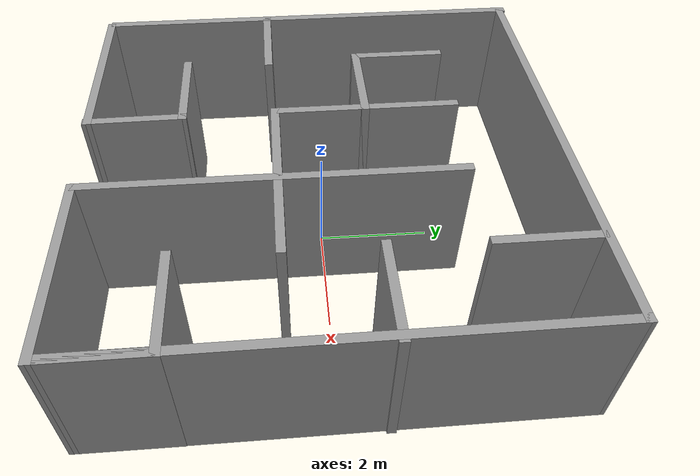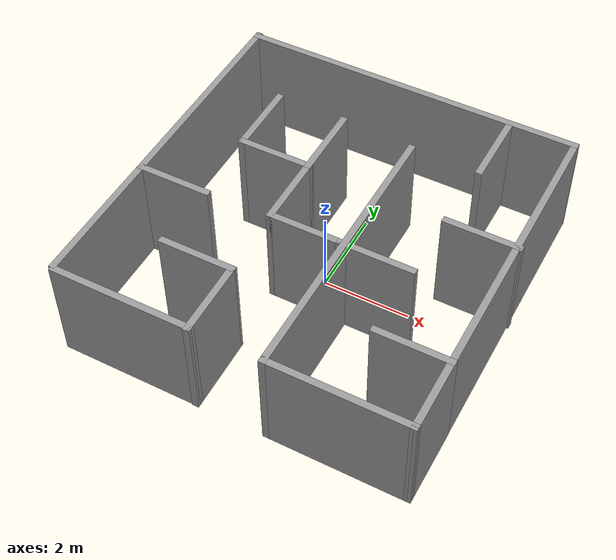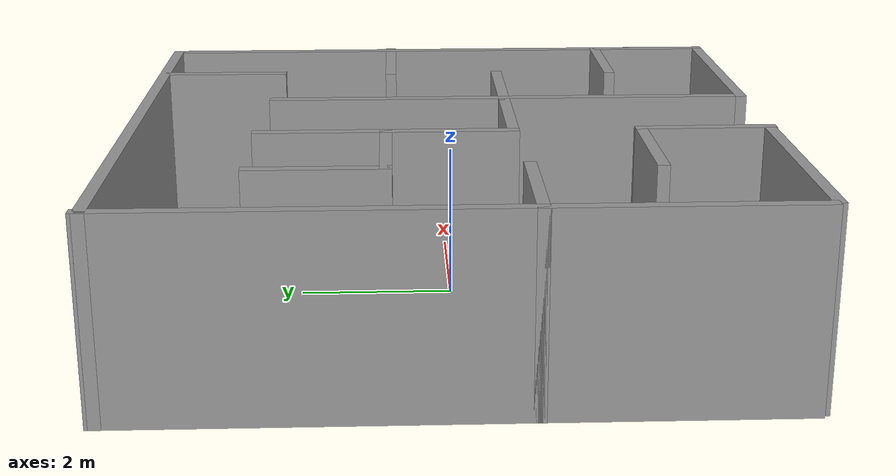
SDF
<?xml version='1.0'?>
<sdf version='1.7'>
  <model name='modelNew'>
    <pose>0.00613 0.0311 0 0 -0 0</pose>
    <link name='Wall_11'>
      <collision name='Wall_11_Collision'>
        <geometry>
          <box>
            <size>8 0.15 2.5</size>
          </box>
        </geometry>
        <pose>0 0 1.25 0 -0 0</pose>
      </collision>
      <visual name='Wall_11_Visual'>
        <pose>0 0 1.25 0 -0 0</pose>
        <geometry>
          <box>
            <size>8 0.15 2.5</size>
          </box>
        </geometry>
        <material>
          <script>
            <uri>file://media/materials/scripts/gazebo.material</uri>
            <name>Gazebo/Grey</name>
          </script>
          <ambient>1 1 1 1</ambient>
        </material>
        <meta>
          <layer>0</layer>
        </meta>
      </visual>
      <pose>-0.027715 4.01981 0 0 -0 3.14159</pose>
    </link>
    <link name='Wall_12'>
      <collision name='Wall_12_Collision'>
        <geometry>
          <box>
            <size>5.08045 0.15 2.5</size>
          </box>
        </geometry>
        <pose>0 0 1.25 0 -0 0</pose>
      </collision>
      <visual name='Wall_12_Visual'>
        <pose>0 0 1.25 0 -0 0</pose>
        <geometry>
          <box>
            <size>5.08045 0.15 2.5</size>
          </box>
        </geometry>
        <material>
          <script>
            <uri>file://media/materials/scripts/gazebo.material</uri>
            <name>Gazebo/Grey</name>
          </script>
          <ambient>1 1 1 1</ambient>
        </material>
        <meta>
          <layer>0</layer>
        </meta>
      </visual>
      <pose>-3.95271 1.59481 0 0 -0 -1.5708</pose>
    </link>
    <link name='Wall_13'>
      <collision name='Wall_13_Collision'>
        <geometry>
          <box>
            <size>1.75 0.15 2.5</size>
          </box>
        </geometry>
        <pose>0 0 1.25 0 -0 0</pose>
      </collision>
      <visual name='Wall_13_Visual'>
        <pose>0 0 1.25 0 -0 0</pose>
        <geometry>
          <box>
            <size>1.75 0.15 2.5</size>
          </box>
        </geometry>
        <material>
          <script>
            <uri>file://media/materials/scripts/gazebo.material</uri>
            <name>Gazebo/Grey</name>
          </script>
          <ambient>1 1 1 1</ambient>
        </material>
        <meta>
          <layer>0</layer>
        </meta>
      </visual>
      <pose>-3.15272 -0.870417 0 0 -0 0</pose>
    </link>
    <link name='Wall_15'>
      <collision name='Wall_15_Collision'>
        <geometry>
          <box>
            <size>1.75 0.15 2.5</size>
          </box>
        </geometry>
        <pose>0 0 1.25 0 -0 0</pose>
      </collision>
      <visual name='Wall_15_Visual'>
        <pose>0 0 1.25 0 -0 0</pose>
        <geometry>
          <box>
            <size>1.75 0.15 2.5</size>
          </box>
        </geometry>
        <material>
          <script>
            <uri>file://media/materials/scripts/gazebo.material</uri>
            <name>Gazebo/Grey</name>
          </script>
          <ambient>1 1 1 1</ambient>
        </material>
        <meta>
          <layer>0</layer>
        </meta>
      </visual>
      <pose>3.12523 -2.43665 0 0 -0 0</pose>
    </link>
    <link name='Wall_16'>
      <collision name='Wall_16_Collision'>
        <geometry>
          <box>
            <size>1.75 0.15 2.5</size>
          </box>
        </geometry>
        <pose>0 0 1.25 0 -0 0</pose>
      </collision>
      <visual name='Wall_16_Visual'>
        <pose>0 0 1.25 0 -0 0</pose>
        <geometry>
          <box>
            <size>1.75 0.15 2.5</size>
          </box>
        </geometry>
        <material>
          <script>
            <uri>file://media/materials/scripts/gazebo.material</uri>
            <name>Gazebo/Grey</name>
          </script>
          <ambient>1 1 1 1</ambient>
        </material>
        <meta>
          <layer>0</layer>
        </meta>
      </visual>
      <pose>3.92523 -3.23665 0 0 -0 -1.5708</pose>
    </link>
    <link name='Wall_17'>
      <collision name='Wall_17_Collision'>
        <geometry>
          <box>
            <size>3.25 0.15 2.5</size>
          </box>
        </geometry>
        <pose>0 0 1.25 0 -0 0</pose>
      </collision>
      <visual name='Wall_17_Visual'>
        <pose>0 0 1.25 0 -0 0</pose>
        <geometry>
          <box>
            <size>3.25 0.15 2.5</size>
          </box>
        </geometry>
        <material>
          <script>
            <uri>file://media/materials/scripts/gazebo.material</uri>
            <name>Gazebo/Grey</name>
          </script>
          <ambient>1 1 1 1</ambient>
        </material>
        <meta>
          <layer>0</layer>
        </meta>
      </visual>
      <pose>2.37523 -4.03665 0 0 -0 3.14159</pose>
    </link>
    <link name='Wall_18'>
      <collision name='Wall_18_Collision'>
        <geometry>
          <box>
            <size>6.5 0.15 2.5</size>
          </box>
        </geometry>
        <pose>0 0 1.25 0 -0 0</pose>
      </collision>
      <visual name='Wall_18_Visual'>
        <pose>0 0 1.25 0 -0 0</pose>
        <geometry>
          <box>
            <size>6.5 0.15 2.5</size>
          </box>
        </geometry>
        <material>
          <script>
            <uri>file://media/materials/scripts/gazebo.material</uri>
            <name>Gazebo/Grey</name>
          </script>
          <ambient>1 1 1 1</ambient>
        </material>
        <meta>
          <layer>0</layer>
        </meta>
      </visual>
      <pose>0.825229 -0.861647 0 0 -0 1.5708</pose>
    </link>
    <link name='Wall_20'>
      <collision name='Wall_20_Collision'>
        <geometry>
          <box>
            <size>1.75 0.15 2.5</size>
          </box>
        </geometry>
        <pose>0 0 1.25 0 -0 0</pose>
      </collision>
      <visual name='Wall_20_Visual'>
        <pose>0 0 1.25 0 -0 0</pose>
        <geometry>
          <box>
            <size>1.75 0.15 2.5</size>
          </box>
        </geometry>
        <material>
          <script>
            <uri>file://media/materials/scripts/gazebo.material</uri>
            <name>Gazebo/Grey</name>
          </script>
          <ambient>1 1 1 1</ambient>
        </material>
        <meta>
          <layer>0</layer>
        </meta>
      </visual>
      <pose>-2.4618 1.61072 0 0 -0 -1.5708</pose>
    </link>
    <link name='Wall_21'>
      <collision name='Wall_21_Collision'>
        <geometry>
          <box>
            <size>1.75 0.15 2.5</size>
          </box>
        </geometry>
        <pose>0 0 1.25 0 -0 0</pose>
      </collision>
      <visual name='Wall_21_Visual'>
        <pose>0 0 1.25 0 -0 0</pose>
        <geometry>
          <box>
            <size>1.75 0.15 2.5</size>
          </box>
        </geometry>
        <material>
          <script>
            <uri>file://media/materials/scripts/gazebo.material</uri>
            <name>Gazebo/Grey</name>
          </script>
          <ambient>1 1 1 1</ambient>
        </material>
        <meta>
          <layer>0</layer>
        </meta>
      </visual>
      <pose>-1.6618 0.810724 0 0 -0 0</pose>
    </link>
    <link name='Wall_22'>
      <collision name='Wall_22_Collision'>
        <geometry>
          <box>
            <size>1.75 0.15 2.5</size>
          </box>
        </geometry>
        <pose>0 0 1.25 0 -0 0</pose>
      </collision>
      <visual name='Wall_22_Visual'>
        <pose>0 0 1.25 0 -0 0</pose>
        <geometry>
          <box>
            <size>1.75 0.15 2.5</size>
          </box>
        </geometry>
        <material>
          <script>
            <uri>file://media/materials/scripts/gazebo.material</uri>
            <name>Gazebo/Grey</name>
          </script>
          <ambient>1 1 1 1</ambient>
        </material>
        <meta>
          <layer>0</layer>
        </meta>
      </visual>
      <pose>-0.861801 1.61072 0 0 -0 1.5708</pose>
    </link>
    <link name='Wall_24'>
      <collision name='Wall_24_Collision'>
        <geometry>
          <box>
            <size>1.75 0.15 2.5</size>
          </box>
        </geometry>
        <pose>0 0 1.25 0 -0 0</pose>
      </collision>
      <visual name='Wall_24_Visual'>
        <pose>0 0 1.25 0 -0 0</pose>
        <geometry>
          <box>
            <size>1.75 0.15 2.5</size>
          </box>
        </geometry>
        <material>
          <script>
            <uri>file://media/materials/scripts/gazebo.material</uri>
            <name>Gazebo/Grey</name>
          </script>
          <ambient>1 1 1 1</ambient>
        </material>
        <meta>
          <layer>0</layer>
        </meta>
      </visual>
      <pose>-0.861801 0.010724 0 0 -0 -1.5708</pose>
    </link>
    <link name='Wall_25'>
      <collision name='Wall_25_Collision'>
        <geometry>
          <box>
            <size>1.75 0.15 2.5</size>
          </box>
        </geometry>
        <pose>0 0 1.25 0 -0 0</pose>
      </collision>
      <visual name='Wall_25_Visual'>
        <pose>0 0 1.25 0 -0 0</pose>
        <geometry>
          <box>
            <size>1.75 0.15 2.5</size>
          </box>
        </geometry>
        <material>
          <script>
            <uri>file://media/materials/scripts/gazebo.material</uri>
            <name>Gazebo/Grey</name>
          </script>
          <ambient>1 1 1 1</ambient>
        </material>
        <meta>
          <layer>0</layer>
        </meta>
      </visual>
      <pose>-0.061801 -0.789276 0 0 -0 0</pose>
    </link>
    <link name='Wall_27'>
      <collision name='Wall_27_Collision'>
        <geometry>
          <box>
            <size>8.2065 0.15 2.5</size>
          </box>
        </geometry>
        <pose>0 0 1.25 0 -0 0</pose>
      </collision>
      <visual name='Wall_27_Visual'>
        <pose>0 0 1.25 0 -0 0</pose>
        <geometry>
          <box>
            <size>8.2065 0.15 2.5</size>
          </box>
        </geometry>
        <material>
          <script>
            <uri>file://media/materials/scripts/gazebo.material</uri>
            <name>Gazebo/Grey</name>
          </script>
          <ambient>1 1 1 1</ambient>
        </material>
        <meta>
          <layer>0</layer>
        </meta>
      </visual>
      <pose>3.91126 -0.008419 0 0 -0 -1.56733</pose>
    </link>
    <link name='Wall_30'>
      <collision name='Wall_30_Collision'>
        <geometry>
          <box>
            <size>1.75 0.15 2.5</size>
          </box>
        </geometry>
        <pose>0 0 1.25 0 -0 0</pose>
      </collision>
      <visual name='Wall_30_Visual'>
        <pose>0 0 1.25 0 -0 0</pose>
        <geometry>
          <box>
            <size>1.75 0.15 2.5</size>
          </box>
        </geometry>
        <material>
          <script>
            <uri>file://media/materials/scripts/gazebo.material</uri>
            <name>Gazebo/Grey</name>
          </script>
          <ambient>1 1 1 1</ambient>
        </material>
        <meta>
          <layer>0</layer>
        </meta>
      </visual>
      <pose>1.5382 -0.789276 0 0 -0 0</pose>
    </link>
    <link name='Wall_32'>
      <collision name='Wall_32_Collision'>
        <geometry>
          <box>
            <size>1.75 0.15 2.5</size>
          </box>
        </geometry>
        <pose>0 0 1.25 0 -0 0</pose>
      </collision>
      <visual name='Wall_32_Visual'>
        <pose>0 0 1.25 0 -0 0</pose>
        <geometry>
          <box>
            <size>1.75 0.15 2.5</size>
          </box>
        </geometry>
        <material>
          <script>
            <uri>file://media/materials/scripts/gazebo.material</uri>
            <name>Gazebo/Grey</name>
          </script>
          <ambient>1 1 1 1</ambient>
        </material>
        <meta>
          <layer>0</layer>
        </meta>
      </visual>
      <pose>3.15272 0.744752 0 0 -0 0</pose>
    </link>
    <link name='Wall_34'>
      <collision name='Wall_34_Collision'>
        <geometry>
          <box>
            <size>1.75 0.15 2.5</size>
          </box>
        </geometry>
        <pose>0 0 1.25 0 -0 0</pose>
      </collision>
      <visual name='Wall_34_Visual'>
        <pose>0 0 1.25 0 -0 0</pose>
        <geometry>
          <box>
            <size>1.75 0.15 2.5</size>
          </box>
        </geometry>
        <material>
          <script>
            <uri>file://media/materials/scripts/gazebo.material</uri>
            <name>Gazebo/Grey</name>
          </script>
          <ambient>1 1 1 1</ambient>
        </material>
        <meta>
          <layer>0</layer>
        </meta>
      </visual>
      <pose>2.40578 3.14044 0 0 -0 1.5708</pose>
    </link>
    <link name='Wall_36'>
      <collision name='Wall_36_Collision'>
        <geometry>
          <box>
            <size>1.75 0.15 2.5</size>
          </box>
        </geometry>
        <pose>0 0 1.25 0 -0 0</pose>
      </collision>
      <visual name='Wall_36_Visual'>
        <pose>0 0 1.25 0 -0 0</pose>
        <geometry>
          <box>
            <size>1.75 0.15 2.5</size>
          </box>
        </geometry>
        <material>
          <script>
            <uri>file://media/materials/scripts/gazebo.material</uri>
            <name>Gazebo/Grey</name>
          </script>
          <ambient>1 1 1 1</ambient>
        </material>
        <meta>
          <layer>0</layer>
        </meta>
      </visual>
      <pose>-1.62148 -2.40636 0 0 -0 0</pose>
    </link>
    <link name='Wall_37'>
      <collision name='Wall_37_Collision'>
        <geometry>
          <box>
            <size>1.80289 0.15 2.5</size>
          </box>
        </geometry>
        <pose>0 0 1.25 0 -0 0</pose>
      </collision>
      <visual name='Wall_37_Visual'>
        <pose>0 0 1.25 0 -0 0</pose>
        <geometry>
          <box>
            <size>1.80289 0.15 2.5</size>
          </box>
        </geometry>
        <material>
          <script>
            <uri>file://media/materials/scripts/gazebo.material</uri>
            <name>Gazebo/Grey</name>
          </script>
          <ambient>1 1 1 1</ambient>
        </material>
        <meta>
          <layer>0</layer>
        </meta>
      </visual>
      <pose>-0.811425 -3.23275 0 0 -0 -1.55863</pose>
    </link>
    <link name='Wall_38'>
      <collision name='Wall_38_Collision'>
        <geometry>
          <box>
            <size>3.25 0.15 2.5</size>
          </box>
        </geometry>
        <pose>0 0 1.25 0 -0 0</pose>
      </collision>
      <visual name='Wall_38_Visual'>
        <pose>0 0 1.25 0 -0 0</pose>
        <geometry>
          <box>
            <size>3.25 0.15 2.5</size>
          </box>
        </geometry>
        <material>
          <script>
            <uri>file://media/materials/scripts/gazebo.material</uri>
            <name>Gazebo/Grey</name>
          </script>
          <ambient>1 1 1 1</ambient>
        </material>
        <meta>
          <layer>0</layer>
        </meta>
      </visual>
      <pose>-2.35137 -4.04154 0 0 -0 3.14159</pose>
    </link>
    <link name='Wall_43'>
      <collision name='Wall_43_Collision'>
        <geometry>
          <box>
            <size>3.25 0.15 2.5</size>
          </box>
        </geometry>
        <pose>0 0 1.25 0 -0 0</pose>
      </collision>
      <visual name='Wall_43_Visual'>
        <pose>0 0 1.25 0 -0 0</pose>
        <geometry>
          <box>
            <size>3.25 0.15 2.5</size>
          </box>
        </geometry>
        <material>
          <script>
            <uri>file://media/materials/scripts/gazebo.material</uri>
            <name>Gazebo/Grey</name>
          </script>
          <ambient>1 1 1 1</ambient>
        </material>
        <meta>
          <layer>0</layer>
        </meta>
      </visual>
      <pose>-3.95271 -2.42042 0 0 -0 -1.5708</pose>
    </link>
    <static>1</static>
  </model>
</sdf>
